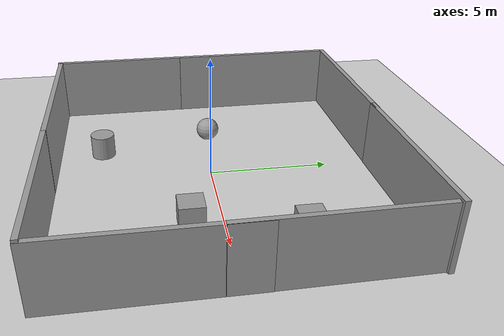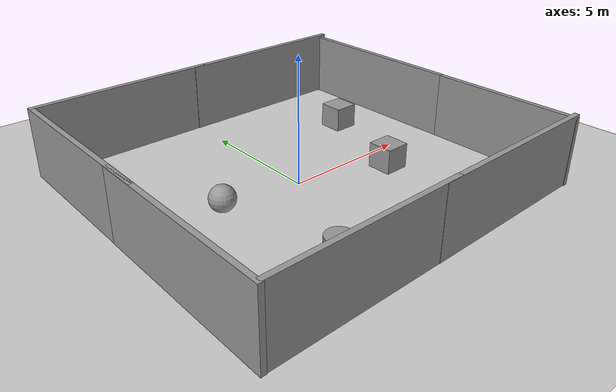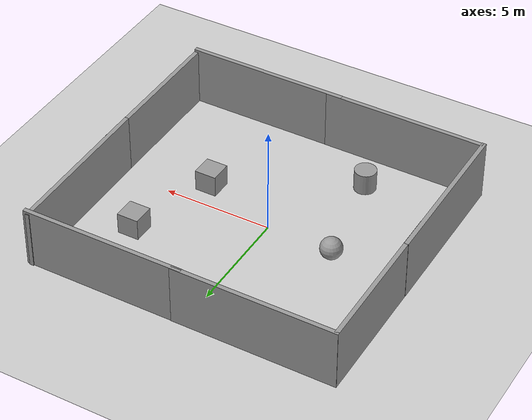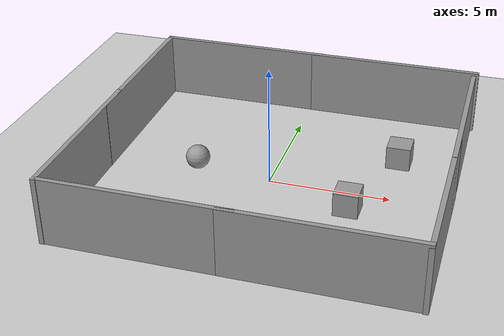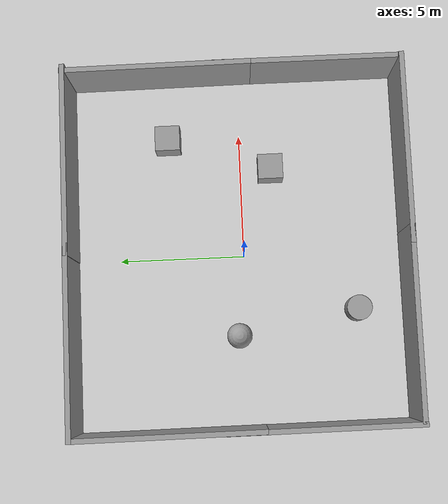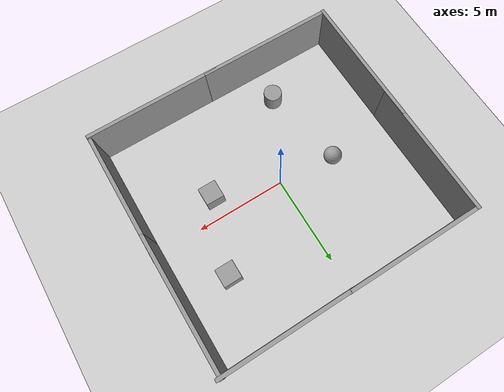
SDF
<sdf version="1.7">
 <world name="default">
  <light name="sun" type="directional">
   <pose>0 0 10 0 -0 0</pose>
   <diffuse>0.8 0.8 0.8 1</diffuse>
   <specular>0.2 0.2 0.2 1</specular>
   <attenuation>
    <range>1000</range>
    <constant>0.9</constant>
    <linear>0.01</linear>
    <quadratic>0.001</quadratic>
   </attenuation>
   <direction>-0.5 0.1 -0.9</direction>
   <spot><inner_angle>0</inner_angle><outer_angle>0</outer_angle><falloff>0</falloff></spot>
  </light>
  <model name="ground_plane">
   <static>1</static>
   <link name="link">
    <collision name="collision">
     <geometry><plane><normal>0 0 1</normal><size>100 100</size></plane></geometry>
     <surface><friction><ode><mu>100</mu><mu2>50</mu2></ode></friction></surface>
    </collision>
    <visual name="visual">
     <cast_shadows>0</cast_shadows>
     <geometry><plane><normal>0 0 1</normal><size>100 100</size></plane></geometry>
     <material>
      <script><uri>file://media/materials/scripts/gazebo.material</uri><name>Gazebo/Grey</name></script>
     </material>
    </visual>
   </link>
  </model>
  <gravity>0 0 -9.8</gravity>
  <magnetic_field>6e-06 2.3e-05 -4.2e-05</magnetic_field>
  <atmosphere type="adiabatic"/>
  <physics type="ode">
   <max_step_size>0.001</max_step_size>
   <real_time_factor>1</real_time_factor>
   <real_time_update_rate>1000</real_time_update_rate>
  </physics>
  <scene><ambient>0.4 0.4 0.4 1</ambient><background>0.7 0.7 0.7 1</background><shadows>1</shadows></scene>
  <spherical_coordinates>
   <surface_model>EARTH_WGS84</surface_model>
   <latitude_deg>0</latitude_deg>
   <longitude_deg>0</longitude_deg>
   <elevation>0</elevation>
   <heading_deg>0</heading_deg>
  </spherical_coordinates>
  <model name="grey_wall">
   <static>1</static>
   <link name="link">
    <pose>0 0 1.4 0 -0 0</pose>
    <collision name="collision"><geometry><box><size>7.5 0.2 2.8</size></box></geometry></collision>
    <visual name="visual">
     <cast_shadows>0</cast_shadows>
     <geometry><box><size>7.5 0.2 2.8</size></box></geometry>
     <material>
      <script>
       <uri>model://grey_wall/materials/scripts</uri>
       <uri>model://grey_wall/materials/textures</uri>
       <name>vrc/grey_wall</name>
      </script>
     </material>
    </visual>
   </link>
   <pose>-3.06111 -6.4258 0 0 -0 0</pose>
  </model>
  <model name="grey_wall_0">
   <static>1</static>
   <link name="link">
    <pose>0 0 1.4 0 -0 0</pose>
    <collision name="collision"><geometry><box><size>7.5 0.2 2.8</size></box></geometry></collision>
    <visual name="visual">
     <cast_shadows>0</cast_shadows>
     <geometry><box><size>7.5 0.2 2.8</size></box></geometry>
     <material>
      <script>
       <uri>model://grey_wall/materials/scripts</uri>
       <uri>model://grey_wall/materials/textures</uri>
       <name>vrc/grey_wall</name>
      </script>
     </material>
    </visual>
   </link>
   <pose>-3.23566 6.8021 0 0 -0 0</pose>
  </model>
  <model name="grey_wall_1">
   <static>1</static>
   <link name="link">
    <pose>0 0 1.4 0 -0 0</pose>
    <collision name="collision"><geometry><box><size>7.5 0.2 2.8</size></box></geometry></collision>
    <visual name="visual">
     <cast_shadows>0</cast_shadows>
     <geometry><box><size>7.5 0.2 2.8</size></box></geometry>
     <material>
      <script>
       <uri>model://grey_wall/materials/scripts</uri>
       <uri>model://grey_wall/materials/textures</uri>
       <name>vrc/grey_wall</name>
      </script>
     </material>
    </visual>
   </link>
   <pose>-6.84318 -2.79839 0 0 -0 1.5764</pose>
  </model>
  <model name="grey_wall_1_clone">
   <static>1</static>
   <link name="link">
    <pose>0 0 1.4 0 -0 0</pose>
    <collision name="collision"><geometry><box><size>7.5 0.2 2.8</size></box></geometry></collision>
    <visual name="visual">
     <cast_shadows>0</cast_shadows>
     <geometry><box><size>7.5 0.2 2.8</size></box></geometry>
     <material>
      <script>
       <uri>model://grey_wall/materials/scripts</uri>
       <uri>model://grey_wall/materials/textures</uri>
       <name>vrc/grey_wall</name>
      </script>
     </material>
    </visual>
   </link>
   <pose>-6.86759 3.1447 0 0 -0 1.5764</pose>
  </model>
  <model name="grey_wall_clone">
   <static>1</static>
   <link name="link">
    <pose>0 0 1.4 0 -0 0</pose>
    <collision name="collision"><geometry><box><size>7.5 0.2 2.8</size></box></geometry></collision>
    <visual name="visual">
     <cast_shadows>0</cast_shadows>
     <geometry><box><size>7.5 0.2 2.8</size></box></geometry>
     <material>
      <script>
       <uri>model://grey_wall/materials/scripts</uri>
       <uri>model://grey_wall/materials/textures</uri>
       <name>vrc/grey_wall</name>
      </script>
     </material>
    </visual>
   </link>
   <pose>3.72612 -6.43347 0 0 -0 0</pose>
  </model>
  <model name="grey_wall_clone_0">
   <static>1</static>
   <link name="link">
    <pose>0 0 1.4 0 -0 0</pose>
    <collision name="collision"><geometry><box><size>7.5 0.2 2.8</size></box></geometry></collision>
    <visual name="visual">
     <cast_shadows>0</cast_shadows>
     <geometry><box><size>7.5 0.2 2.8</size></box></geometry>
     <material>
      <script>
       <uri>model://grey_wall/materials/scripts</uri>
       <uri>model://grey_wall/materials/textures</uri>
       <name>vrc/grey_wall</name>
      </script>
     </material>
    </visual>
   </link>
   <pose>3.77186 6.78688 0 0 -0 0</pose>
  </model>
  <model name="grey_wall_clone_1">
   <static>1</static>
   <link name="link">
    <pose>0 0 1.4 0 -0 0</pose>
    <collision name="collision"><geometry><box><size>7.5 0.2 2.8</size></box></geometry></collision>
    <visual name="visual">
     <cast_shadows>0</cast_shadows>
     <geometry><box><size>7.5 0.2 2.8</size></box></geometry>
     <material>
      <script>
       <uri>model://grey_wall/materials/scripts</uri>
       <uri>model://grey_wall/materials/textures</uri>
       <name>vrc/grey_wall</name>
      </script>
     </material>
    </visual>
   </link>
   <pose>7.3787 -2.79854 -0.112156 0 0 -1.56952</pose>
  </model>
  <model name="grey_wall_clone_2">
   <static>1</static>
   <link name="link">
    <pose>0 0 1.4 0 -0 0</pose>
    <collision name="collision"><geometry><box><size>7.5 0.2 2.8</size></box></geometry></collision>
    <visual name="visual">
     <cast_shadows>0</cast_shadows>
     <geometry><box><size>7.5 0.2 2.8</size></box></geometry>
     <material>
      <script>
       <uri>model://grey_wall/materials/scripts</uri>
       <uri>model://grey_wall/materials/textures</uri>
       <name>vrc/grey_wall</name>
      </script>
     </material>
    </visual>
   </link>
   <pose>7.34039 3.17159 -0.102573 0 0 -1.5613</pose>
  </model>
  <model name="unit_box">
   <pose>3.53167 -1.20935 0.499995 -1e-05 -0 -0</pose>
   <link name="link">
    <inertial>
     <mass>1</mass>
     <inertia>
      <ixx>0.166667</ixx>
      <ixy>0</ixy>
      <ixz>0</ixz>
      <iyy>0.166667</iyy>
      <iyz>0</iyz>
      <izz>0.166667</izz>
     </inertia>
    </inertial>
    <collision name="collision"><geometry><box><size>1 1 1</size></box></geometry></collision>
    <visual name="visual">
     <geometry><box><size>1 1 1</size></box></geometry>
     <material>
      <script><name>Gazebo/Grey</name><uri>file://media/materials/scripts/gazebo.material</uri></script>
     </material>
    </visual>
   </link>
  </model>
  <model name="unit_sphere">
   <pose>-3.20429 0.298877 0.5 0 -0 0</pose>
   <link name="link">
    <inertial>
     <mass>1</mass>
     <inertia><ixx>0.1</ixx><ixy>0</ixy><ixz>0</ixz><iyy>0.1</iyy><iyz>0</iyz><izz>0.1</izz></inertia>
    </inertial>
    <collision name="collision"><geometry><sphere><radius>0.5</radius></sphere></geometry></collision>
    <visual name="visual">
     <geometry><sphere><radius>0.5</radius></sphere></geometry>
     <material>
      <script><name>Gazebo/Grey</name><uri>file://media/materials/scripts/gazebo.material</uri></script>
     </material>
    </visual>
   </link>
  </model>
  <model name="unit_cylinder">
   <pose>-2.2998 -4.48111 0.499998 3e-06 -4e-06 0</pose>
   <link name="link">
    <inertial>
     <mass>1</mass>
     <inertia><ixx>0.145833</ixx><ixy>0</ixy><ixz>0</ixz><iyy>0.145833</iyy><iyz>0</iyz><izz>0.125</izz></inertia>
    </inertial>
    <collision name="collision">
     <geometry><cylinder><radius>0.5</radius><length>1</length></cylinder></geometry>
    </collision>
    <visual name="visual">
     <geometry><cylinder><radius>0.5</radius><length>1</length></cylinder></geometry>
     <material>
      <script><name>Gazebo/Grey</name><uri>file://media/materials/scripts/gazebo.material</uri></script>
     </material>
    </visual>
   </link>
  </model>
  <model name="unit_box_0">
   <pose>4.85428 2.89428 0.499995 0 1e-05 0</pose>
   <link name="link">
    <inertial>
     <mass>1</mass>
     <inertia>
      <ixx>0.166667</ixx>
      <ixy>0</ixy>
      <ixz>0</ixz>
      <iyy>0.166667</iyy>
      <iyz>0</iyz>
      <izz>0.166667</izz>
     </inertia>
    </inertial>
    <collision name="collision"><geometry><box><size>1 1 1</size></box></geometry></collision>
    <visual name="visual">
     <geometry><box><size>1 1 1</size></box></geometry>
     <material>
      <script><name>Gazebo/Grey</name><uri>file://media/materials/scripts/gazebo.material</uri></script>
     </material>
    </visual>
   </link>
  </model>
 </world>
</sdf>
